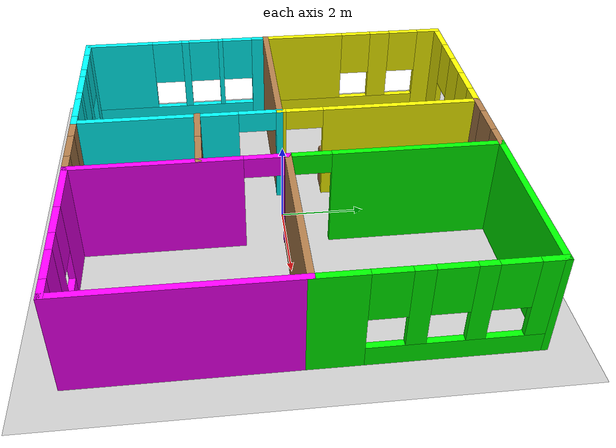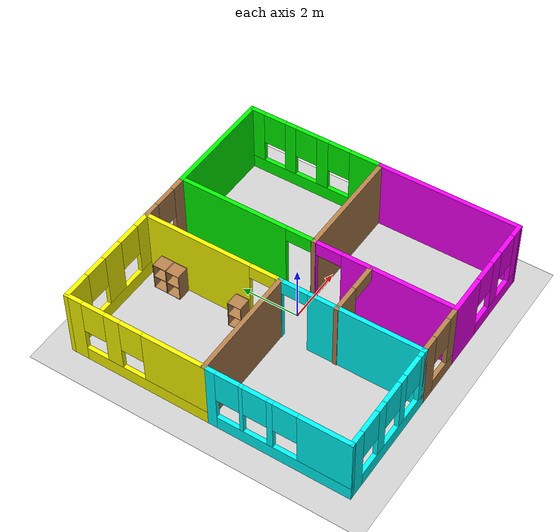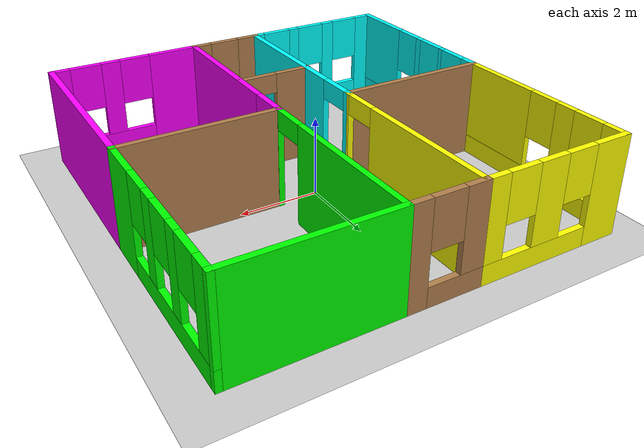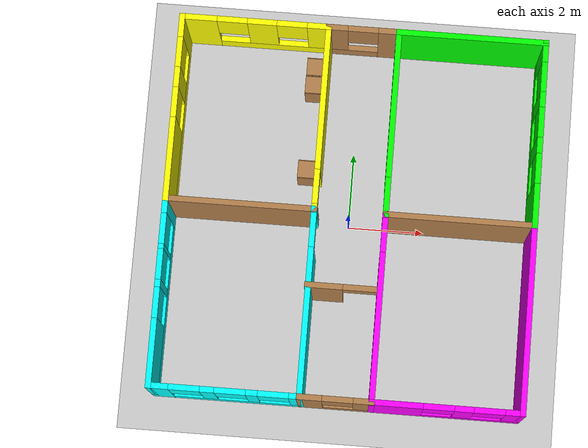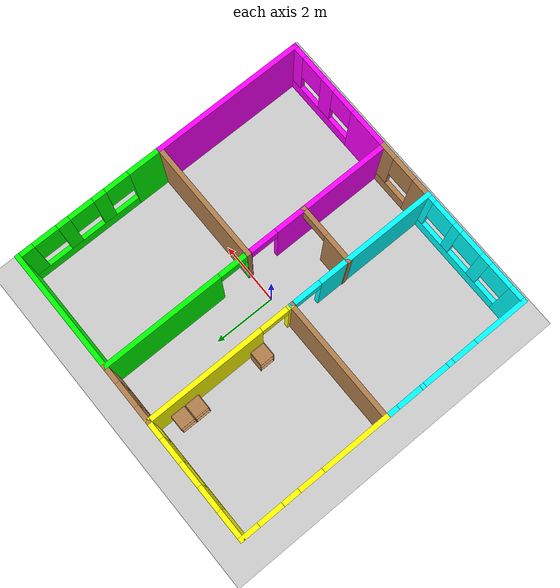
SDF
<sdf version="1.6">
 <world name="default">
  <model name="ground_plane">
   <static>1</static>
   <link name="link">
    <collision name="collision">
     <geometry><plane><normal>0 0 1</normal><size>100 100</size></plane></geometry>
     <surface><friction><ode><mu>100</mu><mu2>50</mu2></ode></friction></surface>
    </collision>
    <visual name="visual">
     <cast_shadows>0</cast_shadows>
     <geometry><plane><normal>0 0 1</normal><size>100 100</size></plane></geometry>
     <material>
      <script><uri>file://media/materials/scripts/gazebo.material</uri><name>Gazebo/Grey</name></script>
     </material>
    </visual>
   </link>
  </model>
  <model name="mybuilding">
   <pose>0.042711 0.025317 0 0 -0 0</pose>
   <link name="Wall_10">
    <pose>-4.775 -2.425 0 0 0 -1.5708</pose>
    <visual name="Wall_10_Visual_0">
     <pose>-2.26286 0 1.25 0 -0 0</pose>
     <geometry><box><size>0.47429 0.15 2.5</size></box></geometry>
     <material>
      <script><uri>file://media/materials/scripts/gazebo.material</uri><name>Gazebo/Grey</name></script>
      <ambient>0 1 1 1</ambient>
     </material>
     <meta><layer>0</layer></meta>
    </visual>
    <collision name="Wall_10_Collision_0">
     <geometry><box><size>0.47429 0.15 2.5</size></box></geometry>
     <pose>-2.26286 0 1.25 0 -0 0</pose>
    </collision>
    <visual name="Wall_10_Visual_1">
     <pose>0.237145 0 0.25 0 -0 0</pose>
     <geometry><box><size>4.52571 0.15 0.5</size></box></geometry>
     <material>
      <script><uri>file://media/materials/scripts/gazebo.material</uri><name>Gazebo/Grey</name></script>
      <ambient>0 1 1 1</ambient>
     </material>
     <meta><layer>0</layer></meta>
    </visual>
    <collision name="Wall_10_Collision_1">
     <geometry><box><size>4.52571 0.15 0.5</size></box></geometry>
     <pose>0.237145 0 0.25 0 -0 0</pose>
    </collision>
    <visual name="Wall_10_Visual_2">
     <pose>-1.16222 0 1.5 0 -0 0</pose>
     <geometry><box><size>0.126973 0.15 2</size></box></geometry>
     <material>
      <script><uri>file://media/materials/scripts/gazebo.material</uri><name>Gazebo/Grey</name></script>
      <ambient>0 1 1 1</ambient>
     </material>
     <meta><layer>0</layer></meta>
    </visual>
    <collision name="Wall_10_Collision_2">
     <geometry><box><size>0.126973 0.15 2</size></box></geometry>
     <pose>-1.16222 0 1.5 0 -0 0</pose>
    </collision>
    <visual name="Wall_10_Visual_3">
     <pose>-0.20027 0 1.5 0 -0 0</pose>
     <geometry><box><size>0.196934 0.15 2</size></box></geometry>
     <material>
      <script><uri>file://media/materials/scripts/gazebo.material</uri><name>Gazebo/Grey</name></script>
      <ambient>0 1 1 1</ambient>
     </material>
     <meta><layer>0</layer></meta>
    </visual>
    <collision name="Wall_10_Collision_3">
     <geometry><box><size>0.196934 0.15 2</size></box></geometry>
     <pose>-0.20027 0 1.5 0 -0 0</pose>
    </collision>
    <visual name="Wall_10_Visual_4">
     <pose>1.5991 0 1.5 0 -0 0</pose>
     <geometry><box><size>1.8018 0.15 2</size></box></geometry>
     <material>
      <script><uri>file://media/materials/scripts/gazebo.material</uri><name>Gazebo/Grey</name></script>
      <ambient>0 1 1 1</ambient>
     </material>
     <meta><layer>0</layer></meta>
    </visual>
    <collision name="Wall_10_Collision_4">
     <geometry><box><size>1.8018 0.15 2</size></box></geometry>
     <pose>1.5991 0 1.5 0 -0 0</pose>
    </collision>
    <visual name="Wall_10_Visual_5">
     <pose>-1.62571 0 1.9 0 -0 0</pose>
     <geometry><box><size>0.8 0.15 1.2</size></box></geometry>
     <material>
      <script><uri>file://media/materials/scripts/gazebo.material</uri><name>Gazebo/Grey</name></script>
      <ambient>0 1 1 1</ambient>
     </material>
     <meta><layer>0</layer></meta>
    </visual>
    <collision name="Wall_10_Collision_5">
     <geometry><box><size>0.8 0.15 1.2</size></box></geometry>
     <pose>-1.62571 0 1.9 0 -0 0</pose>
    </collision>
    <visual name="Wall_10_Visual_6">
     <pose>-0.698737 0 1.9 0 -0 0</pose>
     <geometry><box><size>0.8 0.15 1.2</size></box></geometry>
     <material>
      <script><uri>file://media/materials/scripts/gazebo.material</uri><name>Gazebo/Grey</name></script>
      <ambient>0 1 1 1</ambient>
     </material>
     <meta><layer>0</layer></meta>
    </visual>
    <collision name="Wall_10_Collision_6">
     <geometry><box><size>0.8 0.15 1.2</size></box></geometry>
     <pose>-0.698737 0 1.9 0 -0 0</pose>
    </collision>
    <visual name="Wall_10_Visual_7">
     <pose>0.298197 0 1.9 0 -0 0</pose>
     <geometry><box><size>0.8 0.15 1.2</size></box></geometry>
     <material>
      <script><uri>file://media/materials/scripts/gazebo.material</uri><name>Gazebo/Grey</name></script>
      <ambient>0 1 1 1</ambient>
     </material>
     <meta><layer>0</layer></meta>
    </visual>
    <collision name="Wall_10_Collision_7">
     <geometry><box><size>0.8 0.15 1.2</size></box></geometry>
     <pose>0.298197 0 1.9 0 -0 0</pose>
    </collision>
   </link>
   <link name="Wall_11">
    <pose>-2.85 -4.85 0 0 -0 0</pose>
    <visual name="Wall_11_Visual_0">
     <pose>-1.70776 0 1.25 0 -0 0</pose>
     <geometry><box><size>0.584483 0.15 2.5</size></box></geometry>
     <material>
      <script><uri>file://media/materials/scripts/gazebo.material</uri><name>Gazebo/Grey</name></script>
      <ambient>0 1 1 1</ambient>
     </material>
     <meta><layer>0</layer></meta>
    </visual>
    <collision name="Wall_11_Collision_0">
     <geometry><box><size>0.584483 0.15 2.5</size></box></geometry>
     <pose>-1.70776 0 1.25 0 -0 0</pose>
    </collision>
    <visual name="Wall_11_Visual_1">
     <pose>0.292241 0 0.25 0 -0 0</pose>
     <geometry><box><size>3.41552 0.15 0.5</size></box></geometry>
     <material>
      <script><uri>file://media/materials/scripts/gazebo.material</uri><name>Gazebo/Grey</name></script>
      <ambient>0 1 1 1</ambient>
     </material>
     <meta><layer>0</layer></meta>
    </visual>
    <collision name="Wall_11_Collision_1">
     <geometry><box><size>3.41552 0.15 0.5</size></box></geometry>
     <pose>0.292241 0 0.25 0 -0 0</pose>
    </collision>
    <visual name="Wall_11_Visual_2">
     <pose>-0.4296 0 1.5 0 -0 0</pose>
     <geometry><box><size>0.371834 0.15 2</size></box></geometry>
     <material>
      <script><uri>file://media/materials/scripts/gazebo.material</uri><name>Gazebo/Grey</name></script>
      <ambient>0 1 1 1</ambient>
     </material>
     <meta><layer>0</layer></meta>
    </visual>
    <collision name="Wall_11_Collision_2">
     <geometry><box><size>0.371834 0.15 2</size></box></geometry>
     <pose>-0.4296 0 1.5 0 -0 0</pose>
    </collision>
    <visual name="Wall_11_Visual_3">
     <pose>0.707254 0 1.5 0 -0 0</pose>
     <geometry><box><size>0.301874 0.15 2</size></box></geometry>
     <material>
      <script><uri>file://media/materials/scripts/gazebo.material</uri><name>Gazebo/Grey</name></script>
      <ambient>0 1 1 1</ambient>
     </material>
     <meta><layer>0</layer></meta>
    </visual>
    <collision name="Wall_11_Collision_3">
     <geometry><box><size>0.301874 0.15 2</size></box></geometry>
     <pose>0.707254 0 1.5 0 -0 0</pose>
    </collision>
    <visual name="Wall_11_Visual_4">
     <pose>1.8291 0 1.5 0 -0 0</pose>
     <geometry><box><size>0.341809 0.15 2</size></box></geometry>
     <material>
      <script><uri>file://media/materials/scripts/gazebo.material</uri><name>Gazebo/Grey</name></script>
      <ambient>0 1 1 1</ambient>
     </material>
     <meta><layer>0</layer></meta>
    </visual>
    <collision name="Wall_11_Collision_4">
     <geometry><box><size>0.341809 0.15 2</size></box></geometry>
     <pose>1.8291 0 1.5 0 -0 0</pose>
    </collision>
    <visual name="Wall_11_Visual_5">
     <pose>-1.01552 0 1.9 0 -0 0</pose>
     <geometry><box><size>0.8 0.15 1.2</size></box></geometry>
     <material>
      <script><uri>file://media/materials/scripts/gazebo.material</uri><name>Gazebo/Grey</name></script>
      <ambient>0 1 1 1</ambient>
     </material>
     <meta><layer>0</layer></meta>
    </visual>
    <collision name="Wall_11_Collision_5">
     <geometry><box><size>0.8 0.15 1.2</size></box></geometry>
     <pose>-1.01552 0 1.9 0 -0 0</pose>
    </collision>
    <visual name="Wall_11_Visual_6">
     <pose>0.156317 0 1.9 0 -0 0</pose>
     <geometry><box><size>0.8 0.15 1.2</size></box></geometry>
     <material>
      <script><uri>file://media/materials/scripts/gazebo.material</uri><name>Gazebo/Grey</name></script>
      <ambient>0 1 1 1</ambient>
     </material>
     <meta><layer>0</layer></meta>
    </visual>
    <collision name="Wall_11_Collision_6">
     <geometry><box><size>0.8 0.15 1.2</size></box></geometry>
     <pose>0.156317 0 1.9 0 -0 0</pose>
    </collision>
    <visual name="Wall_11_Visual_7">
     <pose>1.25819 0 1.9 0 -0 0</pose>
     <geometry><box><size>0.8 0.15 1.2</size></box></geometry>
     <material>
      <script><uri>file://media/materials/scripts/gazebo.material</uri><name>Gazebo/Grey</name></script>
      <ambient>0 1 1 1</ambient>
     </material>
     <meta><layer>0</layer></meta>
    </visual>
    <collision name="Wall_11_Collision_7">
     <geometry><box><size>0.8 0.15 1.2</size></box></geometry>
     <pose>1.25819 0 1.9 0 -0 0</pose>
    </collision>
   </link>
   <link name="Wall_12">
    <pose>0 -4.85 0 0 -0 0</pose>
    <visual name="Wall_12_Visual_0">
     <pose>-0.673871 0 1.25 0 -0 0</pose>
     <geometry><box><size>0.652257 0.15 2.5</size></box></geometry>
     <material>
      <script><uri>file://media/materials/scripts/gazebo.material</uri><name>Gazebo/Wood</name></script>
      <ambient>1 1 1 1</ambient>
     </material>
     <meta><layer>0</layer></meta>
    </visual>
    <collision name="Wall_12_Collision_0">
     <geometry><box><size>0.652257 0.15 2.5</size></box></geometry>
     <pose>-0.673871 0 1.25 0 -0 0</pose>
    </collision>
    <visual name="Wall_12_Visual_1">
     <pose>0.326129 0 0.25 0 -0 0</pose>
     <geometry><box><size>1.34774 0.15 0.5</size></box></geometry>
     <material>
      <script><uri>file://media/materials/scripts/gazebo.material</uri><name>Gazebo/Wood</name></script>
      <ambient>1 1 1 1</ambient>
     </material>
     <meta><layer>0</layer></meta>
    </visual>
    <collision name="Wall_12_Collision_1">
     <geometry><box><size>1.34774 0.15 0.5</size></box></geometry>
     <pose>0.326129 0 0.25 0 -0 0</pose>
    </collision>
    <visual name="Wall_12_Visual_2">
     <pose>0.726129 0 1.5 0 -0 0</pose>
     <geometry><box><size>0.547743 0.15 2</size></box></geometry>
     <material>
      <script><uri>file://media/materials/scripts/gazebo.material</uri><name>Gazebo/Wood</name></script>
      <ambient>1 1 1 1</ambient>
     </material>
     <meta><layer>0</layer></meta>
    </visual>
    <collision name="Wall_12_Collision_2">
     <geometry><box><size>0.547743 0.15 2</size></box></geometry>
     <pose>0.726129 0 1.5 0 -0 0</pose>
    </collision>
    <visual name="Wall_12_Visual_3">
     <pose>0.052257 0 1.9 0 -0 0</pose>
     <geometry><box><size>0.8 0.15 1.2</size></box></geometry>
     <material>
      <script><uri>file://media/materials/scripts/gazebo.material</uri><name>Gazebo/Wood</name></script>
      <ambient>1 1 1 1</ambient>
     </material>
     <meta><layer>0</layer></meta>
    </visual>
    <collision name="Wall_12_Collision_3">
     <geometry><box><size>0.8 0.15 1.2</size></box></geometry>
     <pose>0.052257 0 1.9 0 -0 0</pose>
    </collision>
   </link>
   <link name="Wall_13">
    <pose>2.85 -4.85 0 0 -0 0</pose>
    <visual name="Wall_13_Visual_0">
     <pose>-1.30461 0 1.25 0 -0 0</pose>
     <geometry><box><size>1.39079 0.15 2.5</size></box></geometry>
     <material>
      <script><uri>file://media/materials/scripts/gazebo.material</uri><name>Gazebo/Grey</name></script>
      <ambient>1 0 1 1</ambient>
     </material>
     <meta><layer>0</layer></meta>
    </visual>
    <collision name="Wall_13_Collision_0">
     <geometry><box><size>1.39079 0.15 2.5</size></box></geometry>
     <pose>-1.30461 0 1.25 0 -0 0</pose>
    </collision>
    <visual name="Wall_13_Visual_1">
     <pose>0.695393 0 0.25 0 -0 0</pose>
     <geometry><box><size>2.60921 0.15 0.5</size></box></geometry>
     <material>
      <script><uri>file://media/materials/scripts/gazebo.material</uri><name>Gazebo/Grey</name></script>
      <ambient>1 0 1 1</ambient>
     </material>
     <meta><layer>0</layer></meta>
    </visual>
    <collision name="Wall_13_Collision_1">
     <geometry><box><size>2.60921 0.15 0.5</size></box></geometry>
     <pose>0.695393 0 0.25 0 -0 0</pose>
    </collision>
    <visual name="Wall_13_Visual_2">
     <pose>0.437919 0 1.5 0 -0 0</pose>
     <geometry><box><size>0.494265 0.15 2</size></box></geometry>
     <material>
      <script><uri>file://media/materials/scripts/gazebo.material</uri><name>Gazebo/Grey</name></script>
      <ambient>1 0 1 1</ambient>
     </material>
     <meta><layer>0</layer></meta>
    </visual>
    <collision name="Wall_13_Collision_2">
     <geometry><box><size>0.494265 0.15 2</size></box></geometry>
     <pose>0.437919 0 1.5 0 -0 0</pose>
    </collision>
    <visual name="Wall_13_Visual_3">
     <pose>1.74253 0 1.5 0 -0 0</pose>
     <geometry><box><size>0.514949 0.15 2</size></box></geometry>
     <material>
      <script><uri>file://media/materials/scripts/gazebo.material</uri><name>Gazebo/Grey</name></script>
      <ambient>1 0 1 1</ambient>
     </material>
     <meta><layer>0</layer></meta>
    </visual>
    <collision name="Wall_13_Collision_3">
     <geometry><box><size>0.514949 0.15 2</size></box></geometry>
     <pose>1.74253 0 1.5 0 -0 0</pose>
    </collision>
    <visual name="Wall_13_Visual_4">
     <pose>-0.209213 0 1.9 0 -0 0</pose>
     <geometry><box><size>0.8 0.15 1.2</size></box></geometry>
     <material>
      <script><uri>file://media/materials/scripts/gazebo.material</uri><name>Gazebo/Grey</name></script>
      <ambient>1 0 1 1</ambient>
     </material>
     <meta><layer>0</layer></meta>
    </visual>
    <collision name="Wall_13_Collision_4">
     <geometry><box><size>0.8 0.15 1.2</size></box></geometry>
     <pose>-0.209213 0 1.9 0 -0 0</pose>
    </collision>
    <visual name="Wall_13_Visual_5">
     <pose>1.08505 0 1.9 0 -0 0</pose>
     <geometry><box><size>0.8 0.15 1.2</size></box></geometry>
     <material>
      <script><uri>file://media/materials/scripts/gazebo.material</uri><name>Gazebo/Grey</name></script>
      <ambient>1 0 1 1</ambient>
     </material>
     <meta><layer>0</layer></meta>
    </visual>
    <collision name="Wall_13_Collision_5">
     <geometry><box><size>0.8 0.15 1.2</size></box></geometry>
     <pose>1.08505 0 1.9 0 -0 0</pose>
    </collision>
   </link>
   <link name="Wall_14">
    <collision name="Wall_14_Collision">
     <geometry><box><size>5 0.15 2.5</size></box></geometry>
     <pose>0 0 1.25 0 -0 0</pose>
    </collision>
    <visual name="Wall_14_Visual">
     <pose>0 0 1.25 0 -0 0</pose>
     <geometry><box><size>5 0.15 2.5</size></box></geometry>
     <material>
      <script><uri>file://media/materials/scripts/gazebo.material</uri><name>Gazebo/Grey</name></script>
      <ambient>1 0 1 1</ambient>
     </material>
     <meta><layer>0</layer></meta>
    </visual>
    <pose>4.775 -2.425 0 0 -0 1.5708</pose>
   </link>
   <link name="Wall_15">
    <pose>4.775 2.425 0 0 -0 1.5708</pose>
    <visual name="Wall_15_Visual_0">
     <pose>-1.9078 0 1.25 0 -0 0</pose>
     <geometry><box><size>1.1844 0.15 2.5</size></box></geometry>
     <material>
      <script><uri>file://media/materials/scripts/gazebo.material</uri><name>Gazebo/Grey</name></script>
      <ambient>0 1 0 1</ambient>
     </material>
     <meta><layer>0</layer></meta>
    </visual>
    <collision name="Wall_15_Collision_0">
     <geometry><box><size>1.1844 0.15 2.5</size></box></geometry>
     <pose>-1.9078 0 1.25 0 -0 0</pose>
    </collision>
    <visual name="Wall_15_Visual_1">
     <pose>0.592199 0 0.25 0 -0 0</pose>
     <geometry><box><size>3.8156 0.15 0.5</size></box></geometry>
     <material>
      <script><uri>file://media/materials/scripts/gazebo.material</uri><name>Gazebo/Grey</name></script>
      <ambient>0 1 0 1</ambient>
     </material>
     <meta><layer>0</layer></meta>
    </visual>
    <collision name="Wall_15_Collision_1">
     <geometry><box><size>3.8156 0.15 0.5</size></box></geometry>
     <pose>0.592199 0 0.25 0 -0 0</pose>
    </collision>
    <visual name="Wall_15_Visual_2">
     <pose>-0.30345 0 1.5 0 -0 0</pose>
     <geometry><box><size>0.424304 0.15 2</size></box></geometry>
     <material>
      <script><uri>file://media/materials/scripts/gazebo.material</uri><name>Gazebo/Grey</name></script>
      <ambient>0 1 0 1</ambient>
     </material>
     <meta><layer>0</layer></meta>
    </visual>
    <collision name="Wall_15_Collision_2">
     <geometry><box><size>0.424304 0.15 2</size></box></geometry>
     <pose>-0.30345 0 1.5 0 -0 0</pose>
    </collision>
    <visual name="Wall_15_Visual_3">
     <pose>0.912109 0 1.5 0 -0 0</pose>
     <geometry><box><size>0.406815 0.15 2</size></box></geometry>
     <material>
      <script><uri>file://media/materials/scripts/gazebo.material</uri><name>Gazebo/Grey</name></script>
      <ambient>0 1 0 1</ambient>
     </material>
     <meta><layer>0</layer></meta>
    </visual>
    <collision name="Wall_15_Collision_3">
     <geometry><box><size>0.406815 0.15 2</size></box></geometry>
     <pose>0.912109 0 1.5 0 -0 0</pose>
    </collision>
    <visual name="Wall_15_Visual_4">
     <pose>2.20776 0 1.5 0 -0 0</pose>
     <geometry><box><size>0.584483 0.15 2</size></box></geometry>
     <material>
      <script><uri>file://media/materials/scripts/gazebo.material</uri><name>Gazebo/Grey</name></script>
      <ambient>0 1 0 1</ambient>
     </material>
     <meta><layer>0</layer></meta>
    </visual>
    <collision name="Wall_15_Collision_4">
     <geometry><box><size>0.584483 0.15 2</size></box></geometry>
     <pose>2.20776 0 1.5 0 -0 0</pose>
    </collision>
    <visual name="Wall_15_Visual_5">
     <pose>-0.915602 0 1.9 0 -0 0</pose>
     <geometry><box><size>0.8 0.15 1.2</size></box></geometry>
     <material>
      <script><uri>file://media/materials/scripts/gazebo.material</uri><name>Gazebo/Grey</name></script>
      <ambient>0 1 0 1</ambient>
     </material>
     <meta><layer>0</layer></meta>
    </visual>
    <collision name="Wall_15_Collision_5">
     <geometry><box><size>0.8 0.15 1.2</size></box></geometry>
     <pose>-0.915602 0 1.9 0 -0 0</pose>
    </collision>
    <visual name="Wall_15_Visual_6">
     <pose>0.308702 0 1.9 0 -0 0</pose>
     <geometry><box><size>0.8 0.15 1.2</size></box></geometry>
     <material>
      <script><uri>file://media/materials/scripts/gazebo.material</uri><name>Gazebo/Grey</name></script>
      <ambient>0 1 0 1</ambient>
     </material>
     <meta><layer>0</layer></meta>
    </visual>
    <collision name="Wall_15_Collision_6">
     <geometry><box><size>0.8 0.15 1.2</size></box></geometry>
     <pose>0.308702 0 1.9 0 -0 0</pose>
    </collision>
    <visual name="Wall_15_Visual_7">
     <pose>1.51552 0 1.9 0 -0 0</pose>
     <geometry><box><size>0.8 0.15 1.2</size></box></geometry>
     <material>
      <script><uri>file://media/materials/scripts/gazebo.material</uri><name>Gazebo/Grey</name></script>
      <ambient>0 1 0 1</ambient>
     </material>
     <meta><layer>0</layer></meta>
    </visual>
    <collision name="Wall_15_Collision_7">
     <geometry><box><size>0.8 0.15 1.2</size></box></geometry>
     <pose>1.51552 0 1.9 0 -0 0</pose>
    </collision>
   </link>
   <link name="Wall_16">
    <collision name="Wall_16_Collision">
     <geometry><box><size>4 0.15 2.5</size></box></geometry>
     <pose>0 0 1.25 0 -0 0</pose>
    </collision>
    <visual name="Wall_16_Visual">
     <pose>0 0 1.25 0 -0 0</pose>
     <geometry><box><size>4 0.15 2.5</size></box></geometry>
     <material>
      <script><uri>file://media/materials/scripts/gazebo.material</uri><name>Gazebo/Grey</name></script>
      <ambient>0 1 0 1</ambient>
     </material>
     <meta><layer>0</layer></meta>
    </visual>
    <pose>2.85 4.85 0 0 -0 3.14159</pose>
   </link>
   <link name="Wall_17">
    <pose>0 4.85 0 0 -0 3.14159</pose>
    <visual name="Wall_17_Visual_0">
     <pose>-0.691148 0 1.25 0 -0 0</pose>
     <geometry><box><size>0.617703 0.15 2.5</size></box></geometry>
     <material>
      <script><uri>file://media/materials/scripts/gazebo.material</uri><name>Gazebo/Wood</name></script>
      <ambient>1 1 1 1</ambient>
     </material>
     <meta><layer>0</layer></meta>
    </visual>
    <collision name="Wall_17_Collision_0">
     <geometry><box><size>0.617703 0.15 2.5</size></box></geometry>
     <pose>-0.691148 0 1.25 0 -0 0</pose>
    </collision>
    <visual name="Wall_17_Visual_1">
     <pose>0.308852 0 0.25 0 -0 0</pose>
     <geometry><box><size>1.3823 0.15 0.5</size></box></geometry>
     <material>
      <script><uri>file://media/materials/scripts/gazebo.material</uri><name>Gazebo/Wood</name></script>
      <ambient>1 1 1 1</ambient>
     </material>
     <meta><layer>0</layer></meta>
    </visual>
    <collision name="Wall_17_Collision_1">
     <geometry><box><size>1.3823 0.15 0.5</size></box></geometry>
     <pose>0.308852 0 0.25 0 -0 0</pose>
    </collision>
    <visual name="Wall_17_Visual_2">
     <pose>0.708852 0 1.5 0 -0 0</pose>
     <geometry><box><size>0.582297 0.15 2</size></box></geometry>
     <material>
      <script><uri>file://media/materials/scripts/gazebo.material</uri><name>Gazebo/Wood</name></script>
      <ambient>1 1 1 1</ambient>
     </material>
     <meta><layer>0</layer></meta>
    </visual>
    <collision name="Wall_17_Collision_2">
     <geometry><box><size>0.582297 0.15 2</size></box></geometry>
     <pose>0.708852 0 1.5 0 -0 0</pose>
    </collision>
    <visual name="Wall_17_Visual_3">
     <pose>0.017703 0 1.9 0 -0 0</pose>
     <geometry><box><size>0.8 0.15 1.2</size></box></geometry>
     <material>
      <script><uri>file://media/materials/scripts/gazebo.material</uri><name>Gazebo/Wood</name></script>
      <ambient>1 1 1 1</ambient>
     </material>
     <meta><layer>0</layer></meta>
    </visual>
    <collision name="Wall_17_Collision_3">
     <geometry><box><size>0.8 0.15 1.2</size></box></geometry>
     <pose>0.017703 0 1.9 0 -0 0</pose>
    </collision>
   </link>
   <link name="Wall_18">
    <pose>-0.925 2.425 0 0 0 -1.5708</pose>
    <visual name="Wall_18_Visual_0">
     <pose>-0.562457 0 1.25 0 -0 0</pose>
     <geometry><box><size>3.87509 0.15 2.5</size></box></geometry>
     <material>
      <script><uri>file://media/materials/scripts/gazebo.material</uri><name>Gazebo/Grey</name></script>
      <ambient>1 1 0 1</ambient>
     </material>
     <meta><layer>0</layer></meta>
    </visual>
    <collision name="Wall_18_Collision_0">
     <geometry><box><size>3.87509 0.15 2.5</size></box></geometry>
     <pose>-0.562457 0 1.25 0 -0 0</pose>
    </collision>
    <visual name="Wall_18_Visual_1">
     <pose>2.38754 0 1.25 0 -0 0</pose>
     <geometry><box><size>0.224914 0.15 2.5</size></box></geometry>
     <material>
      <script><uri>file://media/materials/scripts/gazebo.material</uri><name>Gazebo/Grey</name></script>
      <ambient>1 1 0 1</ambient>
     </material>
     <meta><layer>0</layer></meta>
    </visual>
    <collision name="Wall_18_Collision_1">
     <geometry><box><size>0.224914 0.15 2.5</size></box></geometry>
     <pose>2.38754 0 1.25 0 -0 0</pose>
    </collision>
    <visual name="Wall_18_Visual_2">
     <pose>1.82509 0 2.25 0 -0 0</pose>
     <geometry><box><size>0.9 0.15 0.5</size></box></geometry>
     <material>
      <script><uri>file://media/materials/scripts/gazebo.material</uri><name>Gazebo/Grey</name></script>
      <ambient>1 1 0 1</ambient>
     </material>
     <meta><layer>0</layer></meta>
    </visual>
    <collision name="Wall_18_Collision_2">
     <geometry><box><size>0.9 0.15 0.5</size></box></geometry>
     <pose>1.82509 0 2.25 0 -0 0</pose>
    </collision>
   </link>
   <link name="Wall_19">
    <collision name="Wall_19_Collision">
     <geometry><box><size>4 0.15 2.5</size></box></geometry>
     <pose>0 0 1.25 0 -0 0</pose>
    </collision>
    <visual name="Wall_19_Visual">
     <pose>0 0 1.25 0 -0 0</pose>
     <geometry><box><size>4 0.15 2.5</size></box></geometry>
     <material>
      <script><uri>file://media/materials/scripts/gazebo.material</uri><name>Gazebo/Wood</name></script>
      <ambient>1 1 1 1</ambient>
     </material>
     <meta><layer>0</layer></meta>
    </visual>
    <pose>-2.85 0 0 0 -0 3.14159</pose>
   </link>
   <link name="Wall_21">
    <pose>-2.85 4.85 0 0 -0 0</pose>
    <visual name="Wall_21_Visual_0">
     <pose>-1.50662 0 1.25 0 -0 0</pose>
     <geometry><box><size>0.986754 0.15 2.5</size></box></geometry>
     <material>
      <script><uri>file://media/materials/scripts/gazebo.material</uri><name>Gazebo/Grey</name></script>
      <ambient>1 1 0 1</ambient>
     </material>
     <meta><layer>0</layer></meta>
    </visual>
    <collision name="Wall_21_Collision_0">
     <geometry><box><size>0.986754 0.15 2.5</size></box></geometry>
     <pose>-1.50662 0 1.25 0 -0 0</pose>
    </collision>
    <visual name="Wall_21_Visual_1">
     <pose>0.493377 0 0.25 0 -0 0</pose>
     <geometry><box><size>3.01325 0.15 0.5</size></box></geometry>
     <material>
      <script><uri>file://media/materials/scripts/gazebo.material</uri><name>Gazebo/Grey</name></script>
      <ambient>1 1 0 1</ambient>
     </material>
     <meta><layer>0</layer></meta>
    </visual>
    <collision name="Wall_21_Collision_1">
     <geometry><box><size>3.01325 0.15 0.5</size></box></geometry>
     <pose>0.493377 0 0.25 0 -0 0</pose>
    </collision>
    <visual name="Wall_21_Visual_2">
     <pose>0.173807 0 1.5 0 -0 0</pose>
     <geometry><box><size>0.774106 0.15 2</size></box></geometry>
     <material>
      <script><uri>file://media/materials/scripts/gazebo.material</uri><name>Gazebo/Grey</name></script>
      <ambient>1 1 0 1</ambient>
     </material>
     <meta><layer>0</layer></meta>
    </visual>
    <collision name="Wall_21_Collision_2">
     <geometry><box><size>0.774106 0.15 2</size></box></geometry>
     <pose>0.173807 0 1.5 0 -0 0</pose>
    </collision>
    <visual name="Wall_21_Visual_3">
     <pose>1.68043 0 1.5 0 -0 0</pose>
     <geometry><box><size>0.63914 0.15 2</size></box></geometry>
     <material>
      <script><uri>file://media/materials/scripts/gazebo.material</uri><name>Gazebo/Grey</name></script>
      <ambient>1 1 0 1</ambient>
     </material>
     <meta><layer>0</layer></meta>
    </visual>
    <collision name="Wall_21_Collision_3">
     <geometry><box><size>0.63914 0.15 2</size></box></geometry>
     <pose>1.68043 0 1.5 0 -0 0</pose>
    </collision>
    <visual name="Wall_21_Visual_4">
     <pose>-0.613246 0 1.9 0 -0 0</pose>
     <geometry><box><size>0.8 0.15 1.2</size></box></geometry>
     <material>
      <script><uri>file://media/materials/scripts/gazebo.material</uri><name>Gazebo/Grey</name></script>
      <ambient>1 1 0 1</ambient>
     </material>
     <meta><layer>0</layer></meta>
    </visual>
    <collision name="Wall_21_Collision_4">
     <geometry><box><size>0.8 0.15 1.2</size></box></geometry>
     <pose>-0.613246 0 1.9 0 -0 0</pose>
    </collision>
    <visual name="Wall_21_Visual_5">
     <pose>0.96086 0 1.9 0 -0 0</pose>
     <geometry><box><size>0.8 0.15 1.2</size></box></geometry>
     <material>
      <script><uri>file://media/materials/scripts/gazebo.material</uri><name>Gazebo/Grey</name></script>
      <ambient>1 1 0 1</ambient>
     </material>
     <meta><layer>0</layer></meta>
    </visual>
    <collision name="Wall_21_Collision_5">
     <geometry><box><size>0.8 0.15 1.2</size></box></geometry>
     <pose>0.96086 0 1.9 0 -0 0</pose>
    </collision>
   </link>
   <link name="Wall_23">
    <collision name="Wall_23_Collision">
     <geometry><box><size>4 0.15 2.5</size></box></geometry>
     <pose>0 0 1.25 0 -0 0</pose>
    </collision>
    <visual name="Wall_23_Visual">
     <pose>0 0 1.25 0 -0 0</pose>
     <geometry><box><size>4 0.15 2.5</size></box></geometry>
     <material>
      <script><uri>file://media/materials/scripts/gazebo.material</uri><name>Gazebo/Wood</name></script>
      <ambient>1 1 1 1</ambient>
     </material>
     <meta><layer>0</layer></meta>
    </visual>
    <pose>2.85 0 0 0 -0 3.14159</pose>
   </link>
   <link name="Wall_24">
    <pose>0.925 -2.425 0 0 0 -1.5708</pose>
    <visual name="Wall_24_Visual_0">
     <pose>-2.41903 0 1.25 0 -0 0</pose>
     <geometry><box><size>0.161939 0.15 2.5</size></box></geometry>
     <material>
      <script><uri>file://media/materials/scripts/gazebo.material</uri><name>Gazebo/Grey</name></script>
      <ambient>1 0 1 1</ambient>
     </material>
     <meta><layer>0</layer></meta>
    </visual>
    <collision name="Wall_24_Collision_0">
     <geometry><box><size>0.161939 0.15 2.5</size></box></geometry>
     <pose>-2.41903 0 1.25 0 -0 0</pose>
    </collision>
    <visual name="Wall_24_Visual_1">
     <pose>0.53097 0 1.25 0 -0 0</pose>
     <geometry><box><size>3.93806 0.15 2.5</size></box></geometry>
     <material>
      <script><uri>file://media/materials/scripts/gazebo.material</uri><name>Gazebo/Grey</name></script>
      <ambient>1 0 1 1</ambient>
     </material>
     <meta><layer>0</layer></meta>
    </visual>
    <collision name="Wall_24_Collision_1">
     <geometry><box><size>3.93806 0.15 2.5</size></box></geometry>
     <pose>0.53097 0 1.25 0 -0 0</pose>
    </collision>
    <visual name="Wall_24_Visual_2">
     <pose>-1.88806 0 2.25 0 -0 0</pose>
     <geometry><box><size>0.9 0.15 0.5</size></box></geometry>
     <material>
      <script><uri>file://media/materials/scripts/gazebo.material</uri><name>Gazebo/Grey</name></script>
      <ambient>1 0 1 1</ambient>
     </material>
     <meta><layer>0</layer></meta>
    </visual>
    <collision name="Wall_24_Collision_2">
     <geometry><box><size>0.9 0.15 0.5</size></box></geometry>
     <pose>-1.88806 0 2.25 0 -0 0</pose>
    </collision>
   </link>
   <link name="Wall_26">
    <pose>0.925 2.425 0 0 -0 1.5708</pose>
    <visual name="Wall_26_Visual_0">
     <pose>-2.42252 0 1.25 0 -0 0</pose>
     <geometry><box><size>0.154954 0.15 2.5</size></box></geometry>
     <material>
      <script><uri>file://media/materials/scripts/gazebo.material</uri><name>Gazebo/Grey</name></script>
      <ambient>0 1 0 1</ambient>
     </material>
     <meta><layer>0</layer></meta>
    </visual>
    <collision name="Wall_26_Collision_0">
     <geometry><box><size>0.154954 0.15 2.5</size></box></geometry>
     <pose>-2.42252 0 1.25 0 -0 0</pose>
    </collision>
    <visual name="Wall_26_Visual_1">
     <pose>0.527477 0 1.25 0 -0 0</pose>
     <geometry><box><size>3.94505 0.15 2.5</size></box></geometry>
     <material>
      <script><uri>file://media/materials/scripts/gazebo.material</uri><name>Gazebo/Grey</name></script>
      <ambient>0 1 0 1</ambient>
     </material>
     <meta><layer>0</layer></meta>
    </visual>
    <collision name="Wall_26_Collision_1">
     <geometry><box><size>3.94505 0.15 2.5</size></box></geometry>
     <pose>0.527477 0 1.25 0 -0 0</pose>
    </collision>
    <visual name="Wall_26_Visual_2">
     <pose>-1.89505 0 2.25 0 -0 0</pose>
     <geometry><box><size>0.9 0.15 0.5</size></box></geometry>
     <material>
      <script><uri>file://media/materials/scripts/gazebo.material</uri><name>Gazebo/Grey</name></script>
      <ambient>0 1 0 1</ambient>
     </material>
     <meta><layer>0</layer></meta>
    </visual>
    <collision name="Wall_26_Collision_2">
     <geometry><box><size>0.9 0.15 0.5</size></box></geometry>
     <pose>-1.89505 0 2.25 0 -0 0</pose>
    </collision>
   </link>
   <link name="Wall_28">
    <pose>-0.925 -2.425 0 0 0 -1.5708</pose>
    <visual name="Wall_28_Visual_0">
     <pose>-2.41903 0 1.25 0 -0 0</pose>
     <geometry><box><size>0.161939 0.15 2.5</size></box></geometry>
     <material>
      <script><uri>file://media/materials/scripts/gazebo.material</uri><name>Gazebo/Grey</name></script>
      <ambient>0 1 1 1</ambient>
     </material>
     <meta><layer>0</layer></meta>
    </visual>
    <collision name="Wall_28_Collision_0">
     <geometry><box><size>0.161939 0.15 2.5</size></box></geometry>
     <pose>-2.41903 0 1.25 0 -0 0</pose>
    </collision>
    <visual name="Wall_28_Visual_1">
     <pose>0.53097 0 1.25 0 -0 0</pose>
     <geometry><box><size>3.93806 0.15 2.5</size></box></geometry>
     <material>
      <script><uri>file://media/materials/scripts/gazebo.material</uri><name>Gazebo/Grey</name></script>
      <ambient>0 1 1 1</ambient>
     </material>
     <meta><layer>0</layer></meta>
    </visual>
    <collision name="Wall_28_Collision_1">
     <geometry><box><size>3.93806 0.15 2.5</size></box></geometry>
     <pose>0.53097 0 1.25 0 -0 0</pose>
    </collision>
    <visual name="Wall_28_Visual_2">
     <pose>-1.88806 0 2.25 0 -0 0</pose>
     <geometry><box><size>0.9 0.15 0.5</size></box></geometry>
     <material>
      <script><uri>file://media/materials/scripts/gazebo.material</uri><name>Gazebo/Grey</name></script>
      <ambient>0 1 1 1</ambient>
     </material>
     <meta><layer>0</layer></meta>
    </visual>
    <collision name="Wall_28_Collision_2">
     <geometry><box><size>0.9 0.15 0.5</size></box></geometry>
     <pose>-1.88806 0 2.25 0 -0 0</pose>
    </collision>
   </link>
   <link name="Wall_30">
    <pose>-0.019676 -1.97113 0 0 -0 0</pose>
    <visual name="Wall_30_Visual_0">
     <pose>-0.505388 0 1.25 0 -0 0</pose>
     <geometry><box><size>0.989225 0.15 2.5</size></box></geometry>
     <material>
      <script><uri>file://media/materials/scripts/gazebo.material</uri><name>Gazebo/Wood</name></script>
      <ambient>1 1 1 1</ambient>
     </material>
     <meta><layer>0</layer></meta>
    </visual>
    <collision name="Wall_30_Collision_0">
     <geometry><box><size>0.989225 0.15 2.5</size></box></geometry>
     <pose>-0.505388 0 1.25 0 -0 0</pose>
    </collision>
    <visual name="Wall_30_Visual_1">
     <pose>0.944612 0 1.25 0 -0 0</pose>
     <geometry><box><size>0.110775 0.15 2.5</size></box></geometry>
     <material>
      <script><uri>file://media/materials/scripts/gazebo.material</uri><name>Gazebo/Wood</name></script>
      <ambient>1 1 1 1</ambient>
     </material>
     <meta><layer>0</layer></meta>
    </visual>
    <collision name="Wall_30_Collision_1">
     <geometry><box><size>0.110775 0.15 2.5</size></box></geometry>
     <pose>0.944612 0 1.25 0 -0 0</pose>
    </collision>
    <visual name="Wall_30_Visual_2">
     <pose>0.439225 0 2.25 0 -0 0</pose>
     <geometry><box><size>0.9 0.15 0.5</size></box></geometry>
     <material>
      <script><uri>file://media/materials/scripts/gazebo.material</uri><name>Gazebo/Wood</name></script>
      <ambient>1 1 1 1</ambient>
     </material>
     <meta><layer>0</layer></meta>
    </visual>
    <collision name="Wall_30_Collision_2">
     <geometry><box><size>0.9 0.15 0.5</size></box></geometry>
     <pose>0.439225 0 2.25 0 -0 0</pose>
    </collision>
   </link>
   <link name="Wall_9">
    <pose>-4.775 2.425 0 0 0 -1.5708</pose>
    <visual name="Wall_9_Visual_0">
     <pose>-2.18152 0 1.25 0 -0 0</pose>
     <geometry><box><size>0.636953 0.15 2.5</size></box></geometry>
     <material>
      <script><uri>file://media/materials/scripts/gazebo.material</uri><name>Gazebo/Grey</name></script>
      <ambient>1 1 0 1</ambient>
     </material>
     <meta><layer>0</layer></meta>
    </visual>
    <collision name="Wall_9_Collision_0">
     <geometry><box><size>0.636953 0.15 2.5</size></box></geometry>
     <pose>-2.18152 0 1.25 0 -0 0</pose>
    </collision>
    <visual name="Wall_9_Visual_1">
     <pose>0.318477 0 0.25 0 -0 0</pose>
     <geometry><box><size>4.36305 0.15 0.5</size></box></geometry>
     <material>
      <script><uri>file://media/materials/scripts/gazebo.material</uri><name>Gazebo/Grey</name></script>
      <ambient>1 1 0 1</ambient>
     </material>
     <meta><layer>0</layer></meta>
    </visual>
    <collision name="Wall_9_Collision_1">
     <geometry><box><size>4.36305 0.15 0.5</size></box></geometry>
     <pose>0.318477 0 0.25 0 -0 0</pose>
    </collision>
    <visual name="Wall_9_Visual_2">
     <pose>-0.789679 0 1.5 0 -0 0</pose>
     <geometry><box><size>0.546735 0.15 2</size></box></geometry>
     <material>
      <script><uri>file://media/materials/scripts/gazebo.material</uri><name>Gazebo/Grey</name></script>
      <ambient>1 1 0 1</ambient>
     </material>
     <meta><layer>0</layer></meta>
    </visual>
    <collision name="Wall_9_Collision_2">
     <geometry><box><size>0.546735 0.15 2</size></box></geometry>
     <pose>-0.789679 0 1.5 0 -0 0</pose>
    </collision>
    <visual name="Wall_9_Visual_3">
     <pose>1.39184 0 1.5 0 -0 0</pose>
     <geometry><box><size>2.21631 0.15 2</size></box></geometry>
     <material>
      <script><uri>file://media/materials/scripts/gazebo.material</uri><name>Gazebo/Grey</name></script>
      <ambient>1 1 0 1</ambient>
     </material>
     <meta><layer>0</layer></meta>
    </visual>
    <collision name="Wall_9_Collision_3">
     <geometry><box><size>2.21631 0.15 2</size></box></geometry>
     <pose>1.39184 0 1.5 0 -0 0</pose>
    </collision>
    <visual name="Wall_9_Visual_4">
     <pose>-1.46305 0 1.9 0 -0 0</pose>
     <geometry><box><size>0.8 0.15 1.2</size></box></geometry>
     <material>
      <script><uri>file://media/materials/scripts/gazebo.material</uri><name>Gazebo/Grey</name></script>
      <ambient>1 1 0 1</ambient>
     </material>
     <meta><layer>0</layer></meta>
    </visual>
    <collision name="Wall_9_Collision_4">
     <geometry><box><size>0.8 0.15 1.2</size></box></geometry>
     <pose>-1.46305 0 1.9 0 -0 0</pose>
    </collision>
    <visual name="Wall_9_Visual_5">
     <pose>-0.116312 0 1.9 0 -0 0</pose>
     <geometry><box><size>0.8 0.15 1.2</size></box></geometry>
     <material>
      <script><uri>file://media/materials/scripts/gazebo.material</uri><name>Gazebo/Grey</name></script>
      <ambient>1 1 0 1</ambient>
     </material>
     <meta><layer>0</layer></meta>
    </visual>
    <collision name="Wall_9_Collision_5">
     <geometry><box><size>0.8 0.15 1.2</size></box></geometry>
     <pose>-0.116312 0 1.9 0 -0 0</pose>
    </collision>
   </link>
   <static>1</static>
  </model>
  <model name="cabinet_3">
   <static>1</static>
   <link name="cabinet_bottom_plate">
    <inertial>
     <pose>0 0 -1 0 -0 0</pose>
     <inertia><ixx>2.05</ixx><ixy>0</ixy><ixz>0</ixz><iyy>2.05</iyy><iyz>0</iyz><izz>2.05</izz></inertia>
     <mass>25</mass>
    </inertial>
    <collision name="cabinet_bottom_plate_geom">
     <pose>0 0 0.01 0 -0 0</pose>
     <geometry><box><size>0.45 0.45 0.02</size></box></geometry>
    </collision>
    <visual name="cabinet_bottom_plate_geom_visual">
     <pose>0 0 0.01 0 -0 0</pose>
     <geometry><box><size>0.45 0.45 0.02</size></box></geometry>
     <material>
      <script><uri>file://media/materials/scripts/gazebo.material</uri><name>Gazebo/Wood</name></script>
     </material>
    </visual>
    <collision name="cabinet_bottom_plate_geom_cabinet_back_plate">
     <pose>0.235 0 0.51 0 -0 0</pose>
     <geometry><box><size>0.02 0.45 1.02</size></box></geometry>
    </collision>
    <visual name="cabinet_bottom_plate_geom_cabinet_back_plate_visual">
     <pose>0.235 0 0.51 0 -0 0</pose>
     <geometry><box><size>0.02 0.45 1.02</size></box></geometry>
     <material>
      <script><uri>file://media/materials/scripts/gazebo.material</uri><name>Gazebo/Wood</name></script>
     </material>
    </visual>
    <collision name="cabinet_bottom_plate_geom_cabinet_left_plate">
     <pose>0 0.235 0.51 0 -0 0</pose>
     <geometry><box><size>0.45 0.02 1.02</size></box></geometry>
    </collision>
    <visual name="cabinet_bottom_plate_geom_cabinet_left_plate_visual">
     <pose>0 0.235 0.51 0 -0 0</pose>
     <geometry><box><size>0.45 0.02 1.02</size></box></geometry>
     <material>
      <script><uri>file://media/materials/scripts/gazebo.material</uri><name>Gazebo/Wood</name></script>
     </material>
    </visual>
    <collision name="cabinet_bottom_plate_geom_cabinet_middle_plate">
     <pose>0 0 0.51 0 -0 0</pose>
     <geometry><box><size>0.45 0.45 0.02</size></box></geometry>
    </collision>
    <visual name="cabinet_bottom_plate_geom_cabinet_middle_plate_visual">
     <pose>0 0 0.51 0 -0 0</pose>
     <geometry><box><size>0.45 0.45 0.02</size></box></geometry>
     <material>
      <script><uri>file://media/materials/scripts/gazebo.material</uri><name>Gazebo/Wood</name></script>
     </material>
    </visual>
    <collision name="cabinet_bottom_plate_geom_cabinet_right_plate">
     <pose>0 -0.235 0.51 0 -0 0</pose>
     <geometry><box><size>0.45 0.02 1.02</size></box></geometry>
    </collision>
    <visual name="cabinet_bottom_plate_geom_cabinet_right_plate_visual">
     <pose>0 -0.235 0.51 0 -0 0</pose>
     <geometry><box><size>0.45 0.02 1.02</size></box></geometry>
     <material>
      <script><uri>file://media/materials/scripts/gazebo.material</uri><name>Gazebo/Wood</name></script>
     </material>
    </visual>
    <collision name="cabinet_bottom_plate_geom_cabinet_top_plate">
     <pose>0 0 1.01 0 -0 0</pose>
     <geometry><box><size>0.45 0.45 0.02</size></box></geometry>
    </collision>
    <visual name="cabinet_bottom_plate_geom_cabinet_top_plate_visual">
     <pose>0 0 1.01 0 -0 0</pose>
     <geometry><box><size>0.45 0.45 0.02</size></box></geometry>
     <material>
      <script><uri>file://media/materials/scripts/gazebo.material</uri><name>Gazebo/Wood</name></script>
     </material>
    </visual>
   </link>
   <pose>-1.19978 4.13257 0 0 -0 0</pose>
  </model>
  <model name="cabinet_4">
   <static>1</static>
   <link name="cabinet_bottom_plate">
    <inertial>
     <pose>0 0 -1 0 -0 0</pose>
     <inertia><ixx>2.05</ixx><ixy>0</ixy><ixz>0</ixz><iyy>2.05</iyy><iyz>0</iyz><izz>2.05</izz></inertia>
     <mass>25</mass>
    </inertial>
    <collision name="cabinet_bottom_plate_geom">
     <pose>0 0 0.01 0 -0 0</pose>
     <geometry><box><size>0.45 0.45 0.02</size></box></geometry>
    </collision>
    <visual name="cabinet_bottom_plate_geom_visual">
     <pose>0 0 0.01 0 -0 0</pose>
     <geometry><box><size>0.45 0.45 0.02</size></box></geometry>
     <material>
      <script><uri>file://media/materials/scripts/gazebo.material</uri><name>Gazebo/Wood</name></script>
     </material>
    </visual>
    <collision name="cabinet_bottom_plate_geom_cabinet_back_plate">
     <pose>0.235 0 0.51 0 -0 0</pose>
     <geometry><box><size>0.02 0.45 1.02</size></box></geometry>
    </collision>
    <visual name="cabinet_bottom_plate_geom_cabinet_back_plate_visual">
     <pose>0.235 0 0.51 0 -0 0</pose>
     <geometry><box><size>0.02 0.45 1.02</size></box></geometry>
     <material>
      <script><uri>file://media/materials/scripts/gazebo.material</uri><name>Gazebo/Wood</name></script>
     </material>
    </visual>
    <collision name="cabinet_bottom_plate_geom_cabinet_left_plate">
     <pose>0 0.235 0.51 0 -0 0</pose>
     <geometry><box><size>0.45 0.02 1.02</size></box></geometry>
    </collision>
    <visual name="cabinet_bottom_plate_geom_cabinet_left_plate_visual">
     <pose>0 0.235 0.51 0 -0 0</pose>
     <geometry><box><size>0.45 0.02 1.02</size></box></geometry>
     <material>
      <script><uri>file://media/materials/scripts/gazebo.material</uri><name>Gazebo/Wood</name></script>
     </material>
    </visual>
    <collision name="cabinet_bottom_plate_geom_cabinet_middle_plate">
     <pose>0 0 0.51 0 -0 0</pose>
     <geometry><box><size>0.45 0.45 0.02</size></box></geometry>
    </collision>
    <visual name="cabinet_bottom_plate_geom_cabinet_middle_plate_visual">
     <pose>0 0 0.51 0 -0 0</pose>
     <geometry><box><size>0.45 0.45 0.02</size></box></geometry>
     <material>
      <script><uri>file://media/materials/scripts/gazebo.material</uri><name>Gazebo/Wood</name></script>
     </material>
    </visual>
    <collision name="cabinet_bottom_plate_geom_cabinet_right_plate">
     <pose>0 -0.235 0.51 0 -0 0</pose>
     <geometry><box><size>0.45 0.02 1.02</size></box></geometry>
    </collision>
    <visual name="cabinet_bottom_plate_geom_cabinet_right_plate_visual">
     <pose>0 -0.235 0.51 0 -0 0</pose>
     <geometry><box><size>0.45 0.02 1.02</size></box></geometry>
     <material>
      <script><uri>file://media/materials/scripts/gazebo.material</uri><name>Gazebo/Wood</name></script>
     </material>
    </visual>
    <collision name="cabinet_bottom_plate_geom_cabinet_top_plate">
     <pose>0 0 1.01 0 -0 0</pose>
     <geometry><box><size>0.45 0.45 0.02</size></box></geometry>
    </collision>
    <visual name="cabinet_bottom_plate_geom_cabinet_top_plate_visual">
     <pose>0 0 1.01 0 -0 0</pose>
     <geometry><box><size>0.45 0.45 0.02</size></box></geometry>
     <material>
      <script><uri>file://media/materials/scripts/gazebo.material</uri><name>Gazebo/Wood</name></script>
     </material>
    </visual>
   </link>
   <pose>-1.20533 3.64017 0 0 -0 0</pose>
  </model>
  <model name="cabinet_5">
   <static>1</static>
   <link name="cabinet_bottom_plate">
    <inertial>
     <pose>0 0 -1 0 -0 0</pose>
     <inertia><ixx>2.05</ixx><ixy>0</ixy><ixz>0</ixz><iyy>2.05</iyy><iyz>0</iyz><izz>2.05</izz></inertia>
     <mass>25</mass>
    </inertial>
    <collision name="cabinet_bottom_plate_geom">
     <pose>0 0 0.01 0 -0 0</pose>
     <geometry><box><size>0.45 0.45 0.02</size></box></geometry>
    </collision>
    <visual name="cabinet_bottom_plate_geom_visual">
     <pose>0 0 0.01 0 -0 0</pose>
     <geometry><box><size>0.45 0.45 0.02</size></box></geometry>
     <material>
      <script><uri>file://media/materials/scripts/gazebo.material</uri><name>Gazebo/Wood</name></script>
     </material>
    </visual>
    <collision name="cabinet_bottom_plate_geom_cabinet_back_plate">
     <pose>0.235 0 0.51 0 -0 0</pose>
     <geometry><box><size>0.02 0.45 1.02</size></box></geometry>
    </collision>
    <visual name="cabinet_bottom_plate_geom_cabinet_back_plate_visual">
     <pose>0.235 0 0.51 0 -0 0</pose>
     <geometry><box><size>0.02 0.45 1.02</size></box></geometry>
     <material>
      <script><uri>file://media/materials/scripts/gazebo.material</uri><name>Gazebo/Wood</name></script>
     </material>
    </visual>
    <collision name="cabinet_bottom_plate_geom_cabinet_left_plate">
     <pose>0 0.235 0.51 0 -0 0</pose>
     <geometry><box><size>0.45 0.02 1.02</size></box></geometry>
    </collision>
    <visual name="cabinet_bottom_plate_geom_cabinet_left_plate_visual">
     <pose>0 0.235 0.51 0 -0 0</pose>
     <geometry><box><size>0.45 0.02 1.02</size></box></geometry>
     <material>
      <script><uri>file://media/materials/scripts/gazebo.material</uri><name>Gazebo/Wood</name></script>
     </material>
    </visual>
    <collision name="cabinet_bottom_plate_geom_cabinet_middle_plate">
     <pose>0 0 0.51 0 -0 0</pose>
     <geometry><box><size>0.45 0.45 0.02</size></box></geometry>
    </collision>
    <visual name="cabinet_bottom_plate_geom_cabinet_middle_plate_visual">
     <pose>0 0 0.51 0 -0 0</pose>
     <geometry><box><size>0.45 0.45 0.02</size></box></geometry>
     <material>
      <script><uri>file://media/materials/scripts/gazebo.material</uri><name>Gazebo/Wood</name></script>
     </material>
    </visual>
    <collision name="cabinet_bottom_plate_geom_cabinet_right_plate">
     <pose>0 -0.235 0.51 0 -0 0</pose>
     <geometry><box><size>0.45 0.02 1.02</size></box></geometry>
    </collision>
    <visual name="cabinet_bottom_plate_geom_cabinet_right_plate_visual">
     <pose>0 -0.235 0.51 0 -0 0</pose>
     <geometry><box><size>0.45 0.02 1.02</size></box></geometry>
     <material>
      <script><uri>file://media/materials/scripts/gazebo.material</uri><name>Gazebo/Wood</name></script>
     </material>
    </visual>
    <collision name="cabinet_bottom_plate_geom_cabinet_top_plate">
     <pose>0 0 1.01 0 -0 0</pose>
     <geometry><box><size>0.45 0.45 0.02</size></box></geometry>
    </collision>
    <visual name="cabinet_bottom_plate_geom_cabinet_top_plate_visual">
     <pose>0 0 1.01 0 -0 0</pose>
     <geometry><box><size>0.45 0.45 0.02</size></box></geometry>
     <material>
      <script><uri>file://media/materials/scripts/gazebo.material</uri><name>Gazebo/Wood</name></script>
     </material>
    </visual>
   </link>
   <pose>-1.22288 1.32909 0 0 -0 0</pose>
  </model>
 </world>
</sdf>
